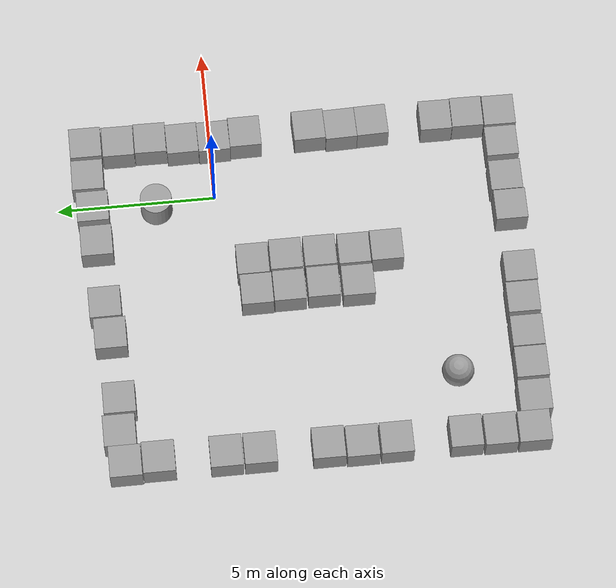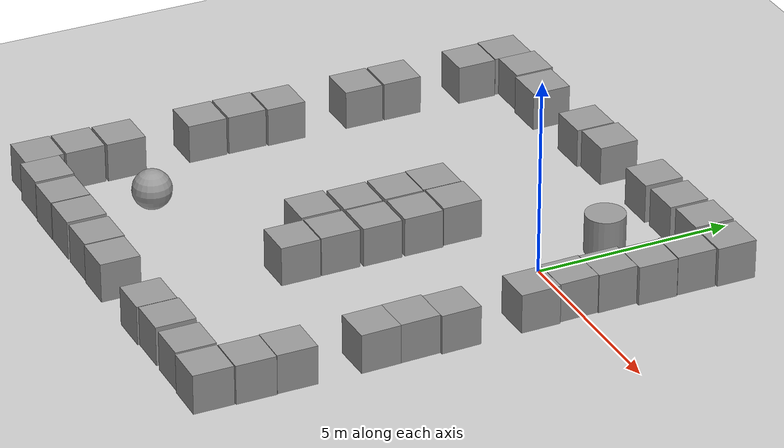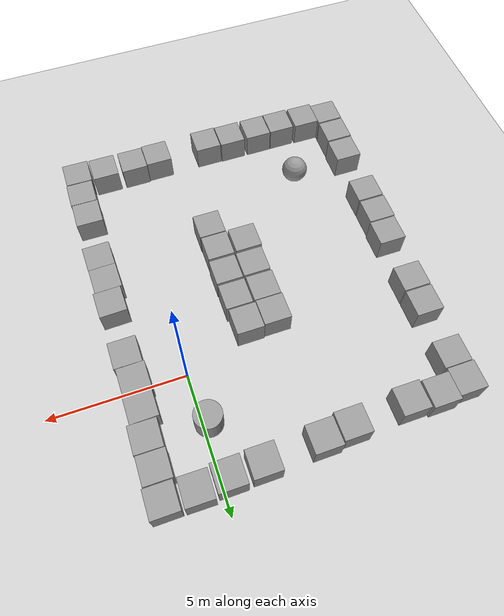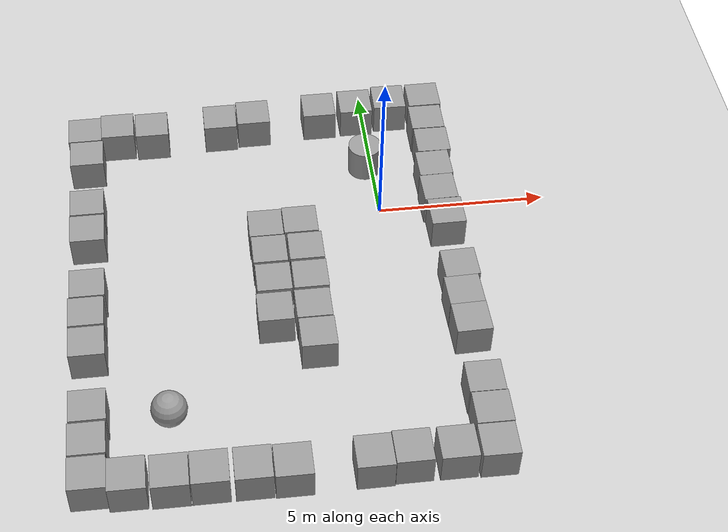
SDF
<sdf version="1.6">
 <world name="default">
  <light name="sun" type="directional">
   <pose>0 0 10 0 -0 0</pose>
   <diffuse>0.8 0.8 0.8 1</diffuse>
   <specular>0.2 0.2 0.2 1</specular>
   <attenuation>
    <range>1000</range>
    <constant>0.9</constant>
    <linear>0.01</linear>
    <quadratic>0.001</quadratic>
   </attenuation>
   <direction>-0.5 0.1 -0.9</direction>
  </light>
  <model name="ground_plane">
   <static>1</static>
   <link name="link">
    <collision name="collision">
     <geometry><plane><normal>0 0 1</normal><size>100 100</size></plane></geometry>
     <surface>
      <contact><collide_bitmask>65535</collide_bitmask></contact>
      <friction><ode><mu>100</mu><mu2>50</mu2></ode></friction>
     </surface>
    </collision>
    <visual name="visual">
     <cast_shadows>0</cast_shadows>
     <geometry><plane><normal>0 0 1</normal><size>100 100</size></plane></geometry>
     <material>
      <script><uri>file://media/materials/scripts/gazebo.material</uri><name>Gazebo/Grey</name></script>
     </material>
    </visual>
   </link>
  </model>
  <gravity>0 0 -9.8</gravity>
  <magnetic_field>6e-06 2.3e-05 -4.2e-05</magnetic_field>
  <atmosphere type="adiabatic"/>
  <physics name="default_physics" default="0" type="ode">
   <max_step_size>0.001</max_step_size>
   <real_time_factor>1</real_time_factor>
   <real_time_update_rate>1000</real_time_update_rate>
  </physics>
  <scene><ambient>0.4 0.4 0.4 1</ambient><background>0.7 0.7 0.7 1</background><shadows>1</shadows></scene>
  <audio><device>default</device></audio>
  <spherical_coordinates>
   <surface_model>EARTH_WGS84</surface_model>
   <latitude_deg>0</latitude_deg>
   <longitude_deg>0</longitude_deg>
   <elevation>0</elevation>
   <heading_deg>0</heading_deg>
  </spherical_coordinates>
  <model name="unit_box">
   <pose>-8.73209 0.394663 0.499995 0 -1e-05 -0.00012</pose>
   <link name="link">
    <inertial>
     <mass>1</mass>
     <inertia>
      <ixx>0.166667</ixx>
      <ixy>0</ixy>
      <ixz>0</ixz>
      <iyy>0.166667</iyy>
      <iyz>0</iyz>
      <izz>0.166667</izz>
     </inertia>
    </inertial>
    <collision name="collision"><geometry><box><size>1 1 1</size></box></geometry></collision>
    <visual name="visual">
     <geometry><box><size>1 1 1</size></box></geometry>
     <material>
      <script><name>Gazebo/Grey</name><uri>file://media/materials/scripts/gazebo.material</uri></script>
     </material>
    </visual>
   </link>
  </model>
  <model name="unit_box_1">
   <pose>-8.73524 -0.650641 0.499995 0 1e-05 0</pose>
   <link name="link">
    <inertial>
     <mass>1</mass>
     <inertia>
      <ixx>0.166667</ixx>
      <ixy>0</ixy>
      <ixz>0</ixz>
      <iyy>0.166667</iyy>
      <iyz>0</iyz>
      <izz>0.166667</izz>
     </inertia>
    </inertial>
    <collision name="collision"><geometry><box><size>1 1 1</size></box></geometry></collision>
    <visual name="visual">
     <geometry><box><size>1 1 1</size></box></geometry>
     <material>
      <script><name>Gazebo/Grey</name><uri>file://media/materials/scripts/gazebo.material</uri></script>
     </material>
    </visual>
   </link>
  </model>
  <model name="unit_box_2">
   <pose>-2.46572 -2.0296 0.499995 1e-05 -0 0</pose>
   <link name="link">
    <inertial>
     <mass>1</mass>
     <inertia>
      <ixx>0.166667</ixx>
      <ixy>0</ixy>
      <ixz>0</ixz>
      <iyy>0.166667</iyy>
      <iyz>0</iyz>
      <izz>0.166667</izz>
     </inertia>
    </inertial>
    <collision name="collision"><geometry><box><size>1 1 1</size></box></geometry></collision>
    <visual name="visual">
     <geometry><box><size>1 1 1</size></box></geometry>
     <material>
      <script><name>Gazebo/Grey</name><uri>file://media/materials/scripts/gazebo.material</uri></script>
     </material>
    </visual>
   </link>
  </model>
  <model name="unit_box_3">
   <pose>-3.52074 -2.0453 0.499995 0 1e-05 0</pose>
   <link name="link">
    <inertial>
     <mass>1</mass>
     <inertia>
      <ixx>0.166667</ixx>
      <ixy>0</ixy>
      <ixz>0</ixz>
      <iyy>0.166667</iyy>
      <iyz>0</iyz>
      <izz>0.166667</izz>
     </inertia>
    </inertial>
    <collision name="collision"><geometry><box><size>1 1 1</size></box></geometry></collision>
    <visual name="visual">
     <geometry><box><size>1 1 1</size></box></geometry>
     <material>
      <script><name>Gazebo/Grey</name><uri>file://media/materials/scripts/gazebo.material</uri></script>
     </material>
    </visual>
   </link>
  </model>
  <model name="unit_box_4">
   <pose>-2.45367 -3.10244 0.499995 1e-05 -0 0</pose>
   <link name="link">
    <inertial>
     <mass>1</mass>
     <inertia>
      <ixx>0.166667</ixx>
      <ixy>0</ixy>
      <ixz>0</ixz>
      <iyy>0.166667</iyy>
      <iyz>0</iyz>
      <izz>0.166667</izz>
     </inertia>
    </inertial>
    <collision name="collision"><geometry><box><size>1 1 1</size></box></geometry></collision>
    <visual name="visual">
     <geometry><box><size>1 1 1</size></box></geometry>
     <material>
      <script><name>Gazebo/Grey</name><uri>file://media/materials/scripts/gazebo.material</uri></script>
     </material>
    </visual>
   </link>
  </model>
  <model name="unit_box_6">
   <pose>-3.55502 -4.19779 0.499995 1e-05 -0 0</pose>
   <link name="link">
    <inertial>
     <mass>1</mass>
     <inertia>
      <ixx>0.166667</ixx>
      <ixy>0</ixy>
      <ixz>0</ixz>
      <iyy>0.166667</iyy>
      <iyz>0</iyz>
      <izz>0.166667</izz>
     </inertia>
    </inertial>
    <collision name="collision"><geometry><box><size>1 1 1</size></box></geometry></collision>
    <visual name="visual">
     <geometry><box><size>1 1 1</size></box></geometry>
     <material>
      <script><name>Gazebo/Grey</name><uri>file://media/materials/scripts/gazebo.material</uri></script>
     </material>
    </visual>
   </link>
  </model>
  <model name="unit_box_8">
   <pose>-2.46188 -5.20751 0.499995 -1e-05 -0 0</pose>
   <link name="link">
    <inertial>
     <mass>1</mass>
     <inertia>
      <ixx>0.166667</ixx>
      <ixy>0</ixy>
      <ixz>0</ixz>
      <iyy>0.166667</iyy>
      <iyz>0</iyz>
      <izz>0.166667</izz>
     </inertia>
    </inertial>
    <collision name="collision"><geometry><box><size>1 1 1</size></box></geometry></collision>
    <visual name="visual">
     <geometry><box><size>1 1 1</size></box></geometry>
     <material>
      <script><name>Gazebo/Grey</name><uri>file://media/materials/scripts/gazebo.material</uri></script>
     </material>
    </visual>
   </link>
  </model>
  <model name="unit_box_9">
   <pose>-2.47968 -4.1786 0.499995 0 -1e-05 0</pose>
   <link name="link">
    <inertial>
     <mass>1</mass>
     <inertia>
      <ixx>0.166667</ixx>
      <ixy>0</ixy>
      <ixz>0</ixz>
      <iyy>0.166667</iyy>
      <iyz>0</iyz>
      <izz>0.166667</izz>
     </inertia>
    </inertial>
    <collision name="collision"><geometry><box><size>1 1 1</size></box></geometry></collision>
    <visual name="visual">
     <geometry><box><size>1 1 1</size></box></geometry>
     <material>
      <script><name>Gazebo/Grey</name><uri>file://media/materials/scripts/gazebo.material</uri></script>
     </material>
    </visual>
   </link>
  </model>
  <model name="unit_box_10">
   <pose>-3.49853 -3.11328 0.499995 0 -1e-05 0</pose>
   <link name="link">
    <inertial>
     <mass>1</mass>
     <inertia>
      <ixx>0.166667</ixx>
      <ixy>0</ixy>
      <ixz>0</ixz>
      <iyy>0.166667</iyy>
      <iyz>0</iyz>
      <izz>0.166667</izz>
     </inertia>
    </inertial>
    <collision name="collision"><geometry><box><size>1 1 1</size></box></geometry></collision>
    <visual name="visual">
     <geometry><box><size>1 1 1</size></box></geometry>
     <material>
      <script><name>Gazebo/Grey</name><uri>file://media/materials/scripts/gazebo.material</uri></script>
     </material>
    </visual>
   </link>
  </model>
  <model name="unit_box_13">
   <pose>-8.75933 -2.74937 0.499995 0 -1e-05 0</pose>
   <link name="link">
    <inertial>
     <mass>1</mass>
     <inertia>
      <ixx>0.166667</ixx>
      <ixy>0</ixy>
      <ixz>0</ixz>
      <iyy>0.166667</iyy>
      <iyz>0</iyz>
      <izz>0.166667</izz>
     </inertia>
    </inertial>
    <collision name="collision"><geometry><box><size>1 1 1</size></box></geometry></collision>
    <visual name="visual">
     <geometry><box><size>1 1 1</size></box></geometry>
     <material>
      <script><name>Gazebo/Grey</name><uri>file://media/materials/scripts/gazebo.material</uri></script>
     </material>
    </visual>
   </link>
  </model>
  <model name="unit_box_14">
   <pose>-8.79846 -3.78614 0.499995 -1e-05 -0 0</pose>
   <link name="link">
    <inertial>
     <mass>1</mass>
     <inertia>
      <ixx>0.166667</ixx>
      <ixy>0</ixy>
      <ixz>0</ixz>
      <iyy>0.166667</iyy>
      <iyz>0</iyz>
      <izz>0.166667</izz>
     </inertia>
    </inertial>
    <collision name="collision"><geometry><box><size>1 1 1</size></box></geometry></collision>
    <visual name="visual">
     <geometry><box><size>1 1 1</size></box></geometry>
     <material>
      <script><name>Gazebo/Grey</name><uri>file://media/materials/scripts/gazebo.material</uri></script>
     </material>
    </visual>
   </link>
  </model>
  <model name="unit_box_15">
   <pose>-8.79377 -4.83924 0.499995 0 1e-05 0</pose>
   <link name="link">
    <inertial>
     <mass>1</mass>
     <inertia>
      <ixx>0.166667</ixx>
      <ixy>0</ixy>
      <ixz>0</ixz>
      <iyy>0.166667</iyy>
      <iyz>0</iyz>
      <izz>0.166667</izz>
     </inertia>
    </inertial>
    <collision name="collision"><geometry><box><size>1 1 1</size></box></geometry></collision>
    <visual name="visual">
     <geometry><box><size>1 1 1</size></box></geometry>
     <material>
      <script><name>Gazebo/Grey</name><uri>file://media/materials/scripts/gazebo.material</uri></script>
     </material>
    </visual>
   </link>
  </model>
  <model name="unit_box_17">
   <pose>-8.79104 -6.9817 0.499995 0 1e-05 0</pose>
   <link name="link">
    <inertial>
     <mass>1</mass>
     <inertia>
      <ixx>0.166667</ixx>
      <ixy>0</ixy>
      <ixz>0</ixz>
      <iyy>0.166667</iyy>
      <iyz>0</iyz>
      <izz>0.166667</izz>
     </inertia>
    </inertial>
    <collision name="collision"><geometry><box><size>1 1 1</size></box></geometry></collision>
    <visual name="visual">
     <geometry><box><size>1 1 1</size></box></geometry>
     <material>
      <script><name>Gazebo/Grey</name><uri>file://media/materials/scripts/gazebo.material</uri></script>
     </material>
    </visual>
   </link>
  </model>
  <model name="unit_box_18">
   <pose>-8.81823 -8.03717 0.499995 -1e-05 -0 0</pose>
   <link name="link">
    <inertial>
     <mass>1</mass>
     <inertia>
      <ixx>0.166667</ixx>
      <ixy>0</ixy>
      <ixz>0</ixz>
      <iyy>0.166667</iyy>
      <iyz>0</iyz>
      <izz>0.166667</izz>
     </inertia>
    </inertial>
    <collision name="collision"><geometry><box><size>1 1 1</size></box></geometry></collision>
    <visual name="visual">
     <geometry><box><size>1 1 1</size></box></geometry>
     <material>
      <script><name>Gazebo/Grey</name><uri>file://media/materials/scripts/gazebo.material</uri></script>
     </material>
    </visual>
   </link>
  </model>
  <model name="unit_box_19">
   <pose>-8.82789 -9.08499 0.499995 0 -1e-05 -0.003825</pose>
   <link name="link">
    <inertial>
     <mass>1</mass>
     <inertia>
      <ixx>0.166667</ixx>
      <ixy>0</ixy>
      <ixz>0</ixz>
      <iyy>0.166667</iyy>
      <iyz>0</iyz>
      <izz>0.166667</izz>
     </inertia>
    </inertial>
    <collision name="collision"><geometry><box><size>1 1 1</size></box></geometry></collision>
    <visual name="visual">
     <geometry><box><size>1 1 1</size></box></geometry>
     <material>
      <script><name>Gazebo/Grey</name><uri>file://media/materials/scripts/gazebo.material</uri></script>
     </material>
    </visual>
   </link>
  </model>
  <model name="unit_box_20">
   <pose>-7.82836 -9.21753 0.499995 0 -1e-05 -0.003821</pose>
   <link name="link">
    <inertial>
     <mass>1</mass>
     <inertia>
      <ixx>0.166667</ixx>
      <ixy>0</ixy>
      <ixz>0</ixz>
      <iyy>0.166667</iyy>
      <iyz>0</iyz>
      <izz>0.166667</izz>
     </inertia>
    </inertial>
    <collision name="collision"><geometry><box><size>1 1 1</size></box></geometry></collision>
    <visual name="visual">
     <geometry><box><size>1 1 1</size></box></geometry>
     <material>
      <script><name>Gazebo/Grey</name><uri>file://media/materials/scripts/gazebo.material</uri></script>
     </material>
    </visual>
   </link>
  </model>
  <model name="unit_box_21">
   <pose>-6.73771 -9.24958 0.499995 1e-05 0 -0.002543</pose>
   <link name="link">
    <inertial>
     <mass>1</mass>
     <inertia>
      <ixx>0.166667</ixx>
      <ixy>0</ixy>
      <ixz>0</ixz>
      <iyy>0.166667</iyy>
      <iyz>0</iyz>
      <izz>0.166667</izz>
     </inertia>
    </inertial>
    <collision name="collision"><geometry><box><size>1 1 1</size></box></geometry></collision>
    <visual name="visual">
     <geometry><box><size>1 1 1</size></box></geometry>
     <material>
      <script><name>Gazebo/Grey</name><uri>file://media/materials/scripts/gazebo.material</uri></script>
     </material>
    </visual>
   </link>
  </model>
  <model name="unit_box_22">
   <pose>-5.71278 -9.24777 0.499995 1e-05 0 -0.002547</pose>
   <link name="link">
    <inertial>
     <mass>1</mass>
     <inertia>
      <ixx>0.166667</ixx>
      <ixy>0</ixy>
      <ixz>0</ixz>
      <iyy>0.166667</iyy>
      <iyz>0</iyz>
      <izz>0.166667</izz>
     </inertia>
    </inertial>
    <collision name="collision"><geometry><box><size>1 1 1</size></box></geometry></collision>
    <visual name="visual">
     <geometry><box><size>1 1 1</size></box></geometry>
     <material>
      <script><name>Gazebo/Grey</name><uri>file://media/materials/scripts/gazebo.material</uri></script>
     </material>
    </visual>
   </link>
  </model>
  <model name="unit_box_23">
   <pose>-4.59276 -9.25097 0.499995 0 -1e-05 -0.00204</pose>
   <link name="link">
    <inertial>
     <mass>1</mass>
     <inertia>
      <ixx>0.166667</ixx>
      <ixy>0</ixy>
      <ixz>0</ixz>
      <iyy>0.166667</iyy>
      <iyz>0</iyz>
      <izz>0.166667</izz>
     </inertia>
    </inertial>
    <collision name="collision"><geometry><box><size>1 1 1</size></box></geometry></collision>
    <visual name="visual">
     <geometry><box><size>1 1 1</size></box></geometry>
     <material>
      <script><name>Gazebo/Grey</name><uri>file://media/materials/scripts/gazebo.material</uri></script>
     </material>
    </visual>
   </link>
  </model>
  <model name="unit_box_24">
   <pose>-3.56355 -9.2781 0.499995 1e-05 0 -0.002492</pose>
   <link name="link">
    <inertial>
     <mass>1</mass>
     <inertia>
      <ixx>0.166667</ixx>
      <ixy>0</ixy>
      <ixz>0</ixz>
      <iyy>0.166667</iyy>
      <iyz>0</iyz>
      <izz>0.166667</izz>
     </inertia>
    </inertial>
    <collision name="collision"><geometry><box><size>1 1 1</size></box></geometry></collision>
    <visual name="visual">
     <geometry><box><size>1 1 1</size></box></geometry>
     <material>
      <script><name>Gazebo/Grey</name><uri>file://media/materials/scripts/gazebo.material</uri></script>
     </material>
    </visual>
   </link>
  </model>
  <model name="unit_box_26">
   <pose>-1.46416 -9.24413 0.499995 0 -1e-05 -0.000116</pose>
   <link name="link">
    <inertial>
     <mass>1</mass>
     <inertia>
      <ixx>0.166667</ixx>
      <ixy>0</ixy>
      <ixz>0</ixz>
      <iyy>0.166667</iyy>
      <iyz>0</iyz>
      <izz>0.166667</izz>
     </inertia>
    </inertial>
    <collision name="collision"><geometry><box><size>1 1 1</size></box></geometry></collision>
    <visual name="visual">
     <geometry><box><size>1 1 1</size></box></geometry>
     <material>
      <script><name>Gazebo/Grey</name><uri>file://media/materials/scripts/gazebo.material</uri></script>
     </material>
    </visual>
   </link>
  </model>
  <model name="unit_box_27">
   <pose>-0.450507 -9.20253 0.499995 -0 -1e-05 -0.000115</pose>
   <link name="link">
    <inertial>
     <mass>1</mass>
     <inertia>
      <ixx>0.166667</ixx>
      <ixy>0</ixy>
      <ixz>0</ixz>
      <iyy>0.166667</iyy>
      <iyz>0</iyz>
      <izz>0.166667</izz>
     </inertia>
    </inertial>
    <collision name="collision"><geometry><box><size>1 1 1</size></box></geometry></collision>
    <visual name="visual">
     <geometry><box><size>1 1 1</size></box></geometry>
     <material>
      <script><name>Gazebo/Grey</name><uri>file://media/materials/scripts/gazebo.material</uri></script>
     </material>
    </visual>
   </link>
  </model>
  <model name="unit_box_28">
   <pose>0.723185 -9.21205 0.499995 0 -1e-05 0</pose>
   <link name="link">
    <inertial>
     <mass>1</mass>
     <inertia>
      <ixx>0.166667</ixx>
      <ixy>0</ixy>
      <ixz>0</ixz>
      <iyy>0.166667</iyy>
      <iyz>0</iyz>
      <izz>0.166667</izz>
     </inertia>
    </inertial>
    <collision name="collision"><geometry><box><size>1 1 1</size></box></geometry></collision>
    <visual name="visual">
     <geometry><box><size>1 1 1</size></box></geometry>
     <material>
      <script><name>Gazebo/Grey</name><uri>file://media/materials/scripts/gazebo.material</uri></script>
     </material>
    </visual>
   </link>
  </model>
  <model name="unit_box_29">
   <pose>1.81683 -8.22556 0.499995 0 -1e-05 -0.008464</pose>
   <link name="link">
    <inertial>
     <mass>1</mass>
     <inertia>
      <ixx>0.166667</ixx>
      <ixy>0</ixy>
      <ixz>0</ixz>
      <iyy>0.166667</iyy>
      <iyz>0</iyz>
      <izz>0.166667</izz>
     </inertia>
    </inertial>
    <collision name="collision"><geometry><box><size>1 1 1</size></box></geometry></collision>
    <visual name="visual">
     <geometry><box><size>1 1 1</size></box></geometry>
     <material>
      <script><name>Gazebo/Grey</name><uri>file://media/materials/scripts/gazebo.material</uri></script>
     </material>
    </visual>
   </link>
  </model>
  <model name="unit_box_30">
   <pose>1.80069 -7.21426 0.499995 1e-05 -0 -0.007795</pose>
   <link name="link">
    <inertial>
     <mass>1</mass>
     <inertia>
      <ixx>0.166667</ixx>
      <ixy>0</ixy>
      <ixz>0</ixz>
      <iyy>0.166667</iyy>
      <iyz>0</iyz>
      <izz>0.166667</izz>
     </inertia>
    </inertial>
    <collision name="collision"><geometry><box><size>1 1 1</size></box></geometry></collision>
    <visual name="visual">
     <geometry><box><size>1 1 1</size></box></geometry>
     <material>
      <script><name>Gazebo/Grey</name><uri>file://media/materials/scripts/gazebo.material</uri></script>
     </material>
    </visual>
   </link>
  </model>
  <model name="unit_box_32">
   <pose>1.818 -5.16964 0.499995 0 1e-05 0.023377</pose>
   <link name="link">
    <inertial>
     <mass>1</mass>
     <inertia>
      <ixx>0.166667</ixx>
      <ixy>0</ixy>
      <ixz>0</ixz>
      <iyy>0.166667</iyy>
      <iyz>0</iyz>
      <izz>0.166667</izz>
     </inertia>
    </inertial>
    <collision name="collision"><geometry><box><size>1 1 1</size></box></geometry></collision>
    <visual name="visual">
     <geometry><box><size>1 1 1</size></box></geometry>
     <material>
      <script><name>Gazebo/Grey</name><uri>file://media/materials/scripts/gazebo.material</uri></script>
     </material>
    </visual>
   </link>
  </model>
  <model name="unit_box_33">
   <pose>1.7892 -4.17001 0.499995 0 -1e-05 0.02336</pose>
   <link name="link">
    <inertial>
     <mass>1</mass>
     <inertia>
      <ixx>0.166667</ixx>
      <ixy>0</ixy>
      <ixz>0</ixz>
      <iyy>0.166667</iyy>
      <iyz>0</iyz>
      <izz>0.166667</izz>
     </inertia>
    </inertial>
    <collision name="collision"><geometry><box><size>1 1 1</size></box></geometry></collision>
    <visual name="visual">
     <geometry><box><size>1 1 1</size></box></geometry>
     <material>
      <script><name>Gazebo/Grey</name><uri>file://media/materials/scripts/gazebo.material</uri></script>
     </material>
    </visual>
   </link>
  </model>
  <model name="unit_box_37">
   <pose>1.75969 0.885162 0.499995 0 1e-05 0.012187</pose>
   <link name="link">
    <inertial>
     <mass>1</mass>
     <inertia>
      <ixx>0.166667</ixx>
      <ixy>0</ixy>
      <ixz>0</ixz>
      <iyy>0.166667</iyy>
      <iyz>0</iyz>
      <izz>0.166667</izz>
     </inertia>
    </inertial>
    <collision name="collision"><geometry><box><size>1 1 1</size></box></geometry></collision>
    <visual name="visual">
     <geometry><box><size>1 1 1</size></box></geometry>
     <material>
      <script><name>Gazebo/Grey</name><uri>file://media/materials/scripts/gazebo.material</uri></script>
     </material>
    </visual>
   </link>
  </model>
  <model name="unit_box_39">
   <pose>-1.4556 3.83114 0.499995 0 1e-05 5.9e-05</pose>
   <link name="link">
    <inertial>
     <mass>1</mass>
     <inertia>
      <ixx>0.166667</ixx>
      <ixy>0</ixy>
      <ixz>0</ixz>
      <iyy>0.166667</iyy>
      <iyz>0</iyz>
      <izz>0.166667</izz>
     </inertia>
    </inertial>
    <collision name="collision"><geometry><box><size>1 1 1</size></box></geometry></collision>
    <visual name="visual">
     <geometry><box><size>1 1 1</size></box></geometry>
     <material>
      <script><name>Gazebo/Grey</name><uri>file://media/materials/scripts/gazebo.material</uri></script>
     </material>
    </visual>
   </link>
  </model>
  <model name="unit_box_40">
   <pose>-0.290693 3.86972 0.499995 0 -1e-05 0</pose>
   <link name="link">
    <inertial>
     <mass>1</mass>
     <inertia>
      <ixx>0.166667</ixx>
      <ixy>0</ixy>
      <ixz>0</ixz>
      <iyy>0.166667</iyy>
      <iyz>0</iyz>
      <izz>0.166667</izz>
     </inertia>
    </inertial>
    <collision name="collision"><geometry><box><size>1 1 1</size></box></geometry></collision>
    <visual name="visual">
     <geometry><box><size>1 1 1</size></box></geometry>
     <material>
      <script><name>Gazebo/Grey</name><uri>file://media/materials/scripts/gazebo.material</uri></script>
     </material>
    </visual>
   </link>
  </model>
  <model name="unit_box_42">
   <pose>0.792054 3.95614 0.499995 0 1e-05 -0.012034</pose>
   <link name="link">
    <inertial>
     <mass>1</mass>
     <inertia>
      <ixx>0.166667</ixx>
      <ixy>0</ixy>
      <ixz>0</ixz>
      <iyy>0.166667</iyy>
      <iyz>0</iyz>
      <izz>0.166667</izz>
     </inertia>
    </inertial>
    <collision name="collision"><geometry><box><size>1 1 1</size></box></geometry></collision>
    <visual name="visual">
     <geometry><box><size>1 1 1</size></box></geometry>
     <material>
      <script><name>Gazebo/Grey</name><uri>file://media/materials/scripts/gazebo.material</uri></script>
     </material>
    </visual>
   </link>
  </model>
  <model name="unit_box_43">
   <pose>1.8457 2.91401 0.499995 0 -1e-05 -0.00716</pose>
   <link name="link">
    <inertial>
     <mass>1</mass>
     <inertia>
      <ixx>0.166667</ixx>
      <ixy>0</ixy>
      <ixz>0</ixz>
      <iyy>0.166667</iyy>
      <iyz>0</iyz>
      <izz>0.166667</izz>
     </inertia>
    </inertial>
    <collision name="collision"><geometry><box><size>1 1 1</size></box></geometry></collision>
    <visual name="visual">
     <geometry><box><size>1 1 1</size></box></geometry>
     <material>
      <script><name>Gazebo/Grey</name><uri>file://media/materials/scripts/gazebo.material</uri></script>
     </material>
    </visual>
   </link>
  </model>
  <model name="unit_box_44">
   <pose>1.86376 1.89549 0.499995 -0 -1e-05 -0.010845</pose>
   <link name="link">
    <inertial>
     <mass>1</mass>
     <inertia>
      <ixx>0.166667</ixx>
      <ixy>0</ixy>
      <ixz>0</ixz>
      <iyy>0.166667</iyy>
      <iyz>0</iyz>
      <izz>0.166667</izz>
     </inertia>
    </inertial>
    <collision name="collision"><geometry><box><size>1 1 1</size></box></geometry></collision>
    <visual name="visual">
     <geometry><box><size>1 1 1</size></box></geometry>
     <material>
      <script><name>Gazebo/Grey</name><uri>file://media/materials/scripts/gazebo.material</uri></script>
     </material>
    </visual>
   </link>
  </model>
  <model name="unit_box_45">
   <pose>-3.53265 3.72336 0.5 0 -0 0.00487</pose>
   <link name="link">
    <inertial>
     <mass>1</mass>
     <inertia>
      <ixx>0.166667</ixx>
      <ixy>0</ixy>
      <ixz>0</ixz>
      <iyy>0.166667</iyy>
      <iyz>0</iyz>
      <izz>0.166667</izz>
     </inertia>
    </inertial>
    <collision name="collision"><geometry><box><size>1 1 1</size></box></geometry></collision>
    <visual name="visual">
     <geometry><box><size>1 1 1</size></box></geometry>
     <material>
      <script><name>Gazebo/Grey</name><uri>file://media/materials/scripts/gazebo.material</uri></script>
     </material>
    </visual>
   </link>
  </model>
  <model name="unit_box_46">
   <pose>-4.57517 3.63075 0.499995 -0 -1e-05 0.00262</pose>
   <link name="link">
    <inertial>
     <mass>1</mass>
     <inertia>
      <ixx>0.166667</ixx>
      <ixy>0</ixy>
      <ixz>0</ixz>
      <iyy>0.166667</iyy>
      <iyz>0</iyz>
      <izz>0.166667</izz>
     </inertia>
    </inertial>
    <collision name="collision"><geometry><box><size>1 1 1</size></box></geometry></collision>
    <visual name="visual">
     <geometry><box><size>1 1 1</size></box></geometry>
     <material>
      <script><name>Gazebo/Grey</name><uri>file://media/materials/scripts/gazebo.material</uri></script>
     </material>
    </visual>
   </link>
  </model>
  <model name="unit_box_48">
   <pose>-6.70133 3.51771 0.499995 -1e-05 -0 0</pose>
   <link name="link">
    <inertial>
     <mass>1</mass>
     <inertia>
      <ixx>0.166667</ixx>
      <ixy>0</ixy>
      <ixz>0</ixz>
      <iyy>0.166667</iyy>
      <iyz>0</iyz>
      <izz>0.166667</izz>
     </inertia>
    </inertial>
    <collision name="collision"><geometry><box><size>1 1 1</size></box></geometry></collision>
    <visual name="visual">
     <geometry><box><size>1 1 1</size></box></geometry>
     <material>
      <script><name>Gazebo/Grey</name><uri>file://media/materials/scripts/gazebo.material</uri></script>
     </material>
    </visual>
   </link>
  </model>
  <model name="unit_box_49">
   <pose>-7.75877 3.58604 0.499995 0 -1e-05 0.000446</pose>
   <link name="link">
    <inertial>
     <mass>1</mass>
     <inertia>
      <ixx>0.166667</ixx>
      <ixy>0</ixy>
      <ixz>0</ixz>
      <iyy>0.166667</iyy>
      <iyz>0</iyz>
      <izz>0.166667</izz>
     </inertia>
    </inertial>
    <collision name="collision"><geometry><box><size>1 1 1</size></box></geometry></collision>
    <visual name="visual">
     <geometry><box><size>1 1 1</size></box></geometry>
     <material>
      <script><name>Gazebo/Grey</name><uri>file://media/materials/scripts/gazebo.material</uri></script>
     </material>
    </visual>
   </link>
  </model>
  <model name="unit_box_50">
   <pose>-8.75873 3.48616 0.499995 0 1e-05 0.000432</pose>
   <link name="link">
    <inertial>
     <mass>1</mass>
     <inertia>
      <ixx>0.166667</ixx>
      <ixy>0</ixy>
      <ixz>0</ixz>
      <iyy>0.166667</iyy>
      <iyz>0</iyz>
      <izz>0.166667</izz>
     </inertia>
    </inertial>
    <collision name="collision"><geometry><box><size>1 1 1</size></box></geometry></collision>
    <visual name="visual">
     <geometry><box><size>1 1 1</size></box></geometry>
     <material>
      <script><name>Gazebo/Grey</name><uri>file://media/materials/scripts/gazebo.material</uri></script>
     </material>
    </visual>
   </link>
  </model>
  <model name="unit_box_51">
   <pose>-8.71676 2.46297 0.499995 0 1e-05 0.000652</pose>
   <link name="link">
    <inertial>
     <mass>1</mass>
     <inertia>
      <ixx>0.166667</ixx>
      <ixy>0</ixy>
      <ixz>0</ixz>
      <iyy>0.166667</iyy>
      <iyz>0</iyz>
      <izz>0.166667</izz>
     </inertia>
    </inertial>
    <collision name="collision"><geometry><box><size>1 1 1</size></box></geometry></collision>
    <visual name="visual">
     <geometry><box><size>1 1 1</size></box></geometry>
     <material>
      <script><name>Gazebo/Grey</name><uri>file://media/materials/scripts/gazebo.material</uri></script>
     </material>
    </visual>
   </link>
  </model>
  <light name="user_point_light_0" type="point">
   <pose>-6.14571 -6.63651 1 0 -0 0</pose>
   <diffuse>0.5 0.5 0.5 1</diffuse>
   <specular>0.1 0.1 0.1 1</specular>
   <attenuation>
    <range>20</range>
    <constant>0.5</constant>
    <linear>0.01</linear>
    <quadratic>0.001</quadratic>
   </attenuation>
   <cast_shadows>0</cast_shadows>
   <direction>0 0 -1</direction>
  </light>
  <light name="user_point_light_1" type="point">
   <pose>-6.11805 1.067 1 0 -0 0</pose>
   <diffuse>0.5 0.5 0.5 1</diffuse>
   <specular>0.1 0.1 0.1 1</specular>
   <attenuation>
    <range>20</range>
    <constant>0.5</constant>
    <linear>0.01</linear>
    <quadratic>0.001</quadratic>
   </attenuation>
   <cast_shadows>0</cast_shadows>
   <direction>0 0 -1</direction>
  </light>
  <light name="user_point_light_2" type="point">
   <pose>-0.573578 1.35587 1 0 -0 0</pose>
   <diffuse>0.5 0.5 0.5 1</diffuse>
   <specular>0.1 0.1 0.1 1</specular>
   <attenuation>
    <range>20</range>
    <constant>0.5</constant>
    <linear>0.01</linear>
    <quadratic>0.001</quadratic>
   </attenuation>
   <cast_shadows>0</cast_shadows>
   <direction>0 0 -1</direction>
  </light>
  <light name="user_point_light_3" type="point">
   <pose>-1.02944 -6.8098 1 0 -0 0</pose>
   <diffuse>0.5 0.5 0.5 1</diffuse>
   <specular>0.1 0.1 0.1 1</specular>
   <attenuation>
    <range>20</range>
    <constant>0.5</constant>
    <linear>0.01</linear>
    <quadratic>0.001</quadratic>
   </attenuation>
   <cast_shadows>0</cast_shadows>
   <direction>0 0 -1</direction>
  </light>
  <model name="unit_sphere">
   <pose>-6.66072 -7.00069 0.5 0 -0 0</pose>
   <link name="link">
    <inertial>
     <mass>1</mass>
     <inertia><ixx>0.1</ixx><ixy>0</ixy><ixz>0</ixz><iyy>0.1</iyy><iyz>0</iyz><izz>0.1</izz></inertia>
    </inertial>
    <collision name="collision"><geometry><sphere><radius>0.5</radius></sphere></geometry></collision>
    <visual name="visual">
     <geometry><sphere><radius>0.5</radius></sphere></geometry>
     <material>
      <script><name>Gazebo/Grey</name><uri>file://media/materials/scripts/gazebo.material</uri></script>
     </material>
    </visual>
   </link>
  </model>
  <model name="unit_cylinder">
   <pose>-0.22533 1.86282 0.499996 2e-06 -0 0</pose>
   <link name="link">
    <inertial>
     <mass>1</mass>
     <inertia><ixx>0.145833</ixx><ixy>0</ixy><ixz>0</ixz><iyy>0.145833</iyy><iyz>0</iyz><izz>0.125</izz></inertia>
    </inertial>
    <collision name="collision">
     <geometry><cylinder><radius>0.5</radius><length>1</length></cylinder></geometry>
    </collision>
    <visual name="visual">
     <geometry><cylinder><radius>0.5</radius><length>1</length></cylinder></geometry>
     <material>
      <script><name>Gazebo/Grey</name><uri>file://media/materials/scripts/gazebo.material</uri></script>
     </material>
    </visual>
   </link>
  </model>
  <model name="unit_box_11">
   <pose>-3.54596 -1.02665 0.499995 0 -1e-05 0</pose>
   <link name="link">
    <inertial>
     <mass>1</mass>
     <inertia>
      <ixx>0.166667</ixx>
      <ixy>0</ixy>
      <ixz>0</ixz>
      <iyy>0.166667</iyy>
      <iyz>0</iyz>
      <izz>0.166667</izz>
     </inertia>
    </inertial>
    <collision name="collision"><geometry><box><size>1 1 1</size></box></geometry></collision>
    <visual name="visual">
     <geometry><box><size>1 1 1</size></box></geometry>
     <material>
      <script><name>Gazebo/Grey</name><uri>file://media/materials/scripts/gazebo.material</uri></script>
     </material>
    </visual>
   </link>
  </model>
  <model name="unit_box_12">
   <pose>-2.52881 -0.98463 0.499995 -1e-05 -0 0</pose>
   <link name="link">
    <inertial>
     <mass>1</mass>
     <inertia>
      <ixx>0.166667</ixx>
      <ixy>0</ixy>
      <ixz>0</ixz>
      <iyy>0.166667</iyy>
      <iyz>0</iyz>
      <izz>0.166667</izz>
     </inertia>
    </inertial>
    <collision name="collision"><geometry><box><size>1 1 1</size></box></geometry></collision>
    <visual name="visual">
     <geometry><box><size>1 1 1</size></box></geometry>
     <material>
      <script><name>Gazebo/Grey</name><uri>file://media/materials/scripts/gazebo.material</uri></script>
     </material>
    </visual>
   </link>
  </model>
  <model name="unit_box_34">
   <pose>1.83974 -3.16852 0.5 0 -0 0.023395</pose>
   <link name="link">
    <inertial>
     <mass>1</mass>
     <inertia>
      <ixx>0.166667</ixx>
      <ixy>0</ixy>
      <ixz>0</ixz>
      <iyy>0.166667</iyy>
      <iyz>0</iyz>
      <izz>0.166667</izz>
     </inertia>
    </inertial>
    <collision name="collision"><geometry><box><size>1 1 1</size></box></geometry></collision>
    <visual name="visual">
     <geometry><box><size>1 1 1</size></box></geometry>
     <material>
      <script><name>Gazebo/Grey</name><uri>file://media/materials/scripts/gazebo.material</uri></script>
     </material>
    </visual>
   </link>
  </model>
  <model name="unit_box_36">
   <pose>1.80822 -1.12179 0.499995 1e-05 -0 0.007681</pose>
   <link name="link">
    <inertial>
     <mass>1</mass>
     <inertia>
      <ixx>0.166667</ixx>
      <ixy>0</ixy>
      <ixz>0</ixz>
      <iyy>0.166667</iyy>
      <iyz>0</iyz>
      <izz>0.166667</izz>
     </inertia>
    </inertial>
    <collision name="collision"><geometry><box><size>1 1 1</size></box></geometry></collision>
    <visual name="visual">
     <geometry><box><size>1 1 1</size></box></geometry>
     <material>
      <script><name>Gazebo/Grey</name><uri>file://media/materials/scripts/gazebo.material</uri></script>
     </material>
    </visual>
   </link>
  </model>
  <model name="unit_box_52">
   <pose>1.74258 -0.118029 0.499995 0 -1e-05 0.017177</pose>
   <link name="link">
    <inertial>
     <mass>1</mass>
     <inertia>
      <ixx>0.166667</ixx>
      <ixy>0</ixy>
      <ixz>0</ixz>
      <iyy>0.166667</iyy>
      <iyz>0</iyz>
      <izz>0.166667</izz>
     </inertia>
    </inertial>
    <collision name="collision"><geometry><box><size>1 1 1</size></box></geometry></collision>
    <visual name="visual">
     <geometry><box><size>1 1 1</size></box></geometry>
     <material>
      <script><name>Gazebo/Grey</name><uri>file://media/materials/scripts/gazebo.material</uri></script>
     </material>
    </visual>
   </link>
  </model>
  <model name="unit_box_41">
   <pose>1.78675 -9.24704 0.499995 1e-05 0 -0.008505</pose>
   <link name="link">
    <inertial>
     <mass>1</mass>
     <inertia>
      <ixx>0.166667</ixx>
      <ixy>0</ixy>
      <ixz>0</ixz>
      <iyy>0.166667</iyy>
      <iyz>0</iyz>
      <izz>0.166667</izz>
     </inertia>
    </inertial>
    <collision name="collision"><geometry><box><size>1 1 1</size></box></geometry></collision>
    <visual name="visual">
     <geometry><box><size>1 1 1</size></box></geometry>
     <material>
      <script><name>Gazebo/Grey</name><uri>file://media/materials/scripts/gazebo.material</uri></script>
     </material>
    </visual>
   </link>
  </model>
  <model name="unit_box_53">
   <pose>1.89369 3.9453 0.499995 0 1e-05 0</pose>
   <link name="link">
    <inertial>
     <mass>1</mass>
     <inertia>
      <ixx>0.166667</ixx>
      <ixy>0</ixy>
      <ixz>0</ixz>
      <iyy>0.166667</iyy>
      <iyz>0</iyz>
      <izz>0.166667</izz>
     </inertia>
    </inertial>
    <collision name="collision"><geometry><box><size>1 1 1</size></box></geometry></collision>
    <visual name="visual">
     <geometry><box><size>1 1 1</size></box></geometry>
     <material>
      <script><name>Gazebo/Grey</name><uri>file://media/materials/scripts/gazebo.material</uri></script>
     </material>
    </visual>
   </link>
  </model>
 </world>
</sdf>
